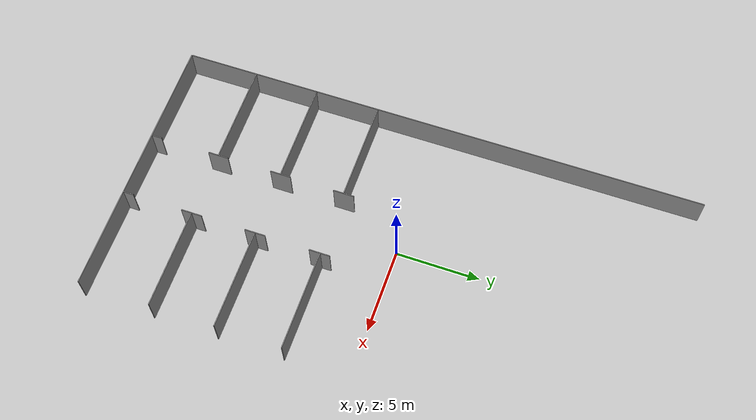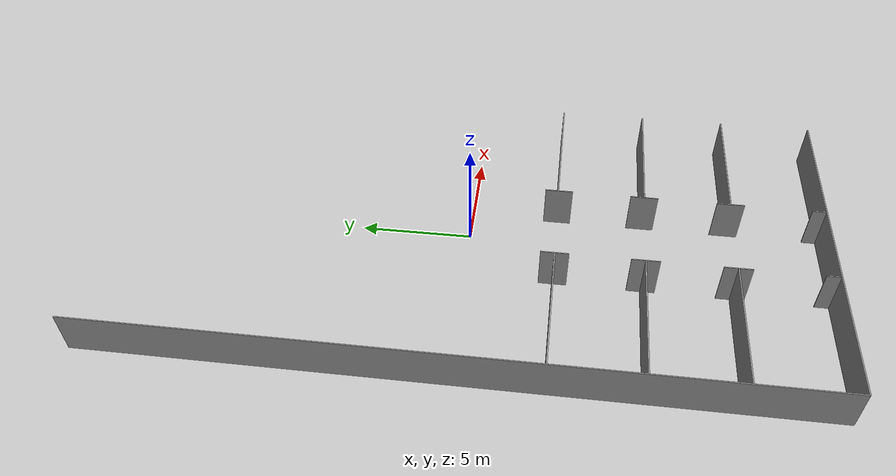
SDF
<sdf version="1.6">
 <model name="straight_corridor">
  <link name="link_0_clone">
   <inertial>
    <mass>1.76422</mass>
    <inertia><ixx>41.0771</ixx><ixy>0</ixy><ixz>0</ixz><iyy>0.544921</iyy><iyz>0</iyz><izz>41.6211</izz></inertia>
   </inertial>
   <pose>-8 -0 0.5 0 1.57066 0</pose>
   <visual name="visual">
    <geometry><box><size>2 32 0.05</size></box></geometry>
    <material>
     <lighting>1</lighting>
     <script><uri>file://media/materials/scripts/gazebo.material</uri><name>Gazebo/Grey</name></script>
     <shader type="vertex"><normal_map>__default__</normal_map></shader>
     <ambient>0.3 0.3 0.3 1</ambient>
     <diffuse>0.7 0.7 0.7 1</diffuse>
     <specular>0.01 0.01 0.01 1</specular>
     <emissive>0 0 0 1</emissive>
    </material>
   </visual>
   <collision name="collision">
    <geometry><box><size>2 32 0.05</size></box></geometry>
    <surface>
     <friction>
      <ode><mu>1</mu><mu2>1</mu2><fdir1>0 0 0</fdir1><slip1>0</slip1><slip2>0</slip2></ode>
      <torsional>
       <coefficient>1</coefficient>
       <patch_radius>0</patch_radius>
       <surface_radius>0</surface_radius>
       <use_patch_radius>1</use_patch_radius>
       <ode><slip>0</slip></ode>
      </torsional>
     </friction>
     <bounce><restitution_coefficient>0</restitution_coefficient><threshold>1e+06</threshold></bounce>
     <contact>
      <collide_without_contact>0</collide_without_contact>
      <collide_without_contact_bitmask>1</collide_without_contact_bitmask>
      <collide_bitmask>1</collide_bitmask>
      <ode>
       <soft_cfm>0</soft_cfm>
       <soft_erp>0.2</soft_erp>
       <kp>1e+13</kp>
       <kd>1</kd>
       <max_vel>0.01</max_vel>
       <min_depth>0</min_depth>
      </ode>
      <bullet>
       <split_impulse>1</split_impulse>
       <split_impulse_penetration_threshold>-0.01</split_impulse_penetration_threshold>
       <soft_cfm>0</soft_cfm>
       <soft_erp>0.2</soft_erp>
       <kp>1e+13</kp>
       <kd>1</kd>
      </bullet>
     </contact>
    </surface>
   </collision>
  </link>
  <link name="link_0_clone_0">
   <inertial>
    <mass>1.76422</mass>
    <inertia><ixx>41.0771</ixx><ixy>0</ixy><ixz>0</ixz><iyy>0.544921</iyy><iyz>0</iyz><izz>41.6211</izz></inertia>
   </inertial>
   <pose>-0 -16 0.5 1.57072 1.57079 3.14151</pose>
   <visual name="visual">
    <geometry><box><size>2 16 0.05</size></box></geometry>
    <material>
     <lighting>1</lighting>
     <script><uri>file://media/materials/scripts/gazebo.material</uri><name>Gazebo/Grey</name></script>
     <shader type="pixel"><normal_map>__default__</normal_map></shader>
     <ambient>0.3 0.3 0.3 1</ambient>
     <diffuse>0.7 0.7 0.7 1</diffuse>
     <specular>0.01 0.01 0.01 1</specular>
     <emissive>0 0 0 1</emissive>
    </material>
   </visual>
   <collision name="collision">
    <geometry><box><size>2 16 0.05</size></box></geometry>
    <surface>
     <friction>
      <ode><mu>1</mu><mu2>1</mu2><fdir1>0 0 0</fdir1><slip1>0</slip1><slip2>0</slip2></ode>
      <torsional>
       <coefficient>1</coefficient>
       <patch_radius>0</patch_radius>
       <surface_radius>0</surface_radius>
       <use_patch_radius>1</use_patch_radius>
       <ode><slip>0</slip></ode>
      </torsional>
     </friction>
     <bounce><restitution_coefficient>0</restitution_coefficient><threshold>1e+06</threshold></bounce>
     <contact>
      <collide_without_contact>0</collide_without_contact>
      <collide_without_contact_bitmask>1</collide_without_contact_bitmask>
      <collide_bitmask>1</collide_bitmask>
      <ode>
       <soft_cfm>0</soft_cfm>
       <soft_erp>0.2</soft_erp>
       <kp>1e+13</kp>
       <kd>1</kd>
       <max_vel>0.01</max_vel>
       <min_depth>0</min_depth>
      </ode>
      <bullet>
       <split_impulse>1</split_impulse>
       <split_impulse_penetration_threshold>-0.01</split_impulse_penetration_threshold>
       <soft_cfm>0</soft_cfm>
       <soft_erp>0.2</soft_erp>
       <kp>1e+13</kp>
       <kd>1</kd>
      </bullet>
     </contact>
    </surface>
   </collision>
  </link>
  <link name="link_0_clone_clone">
   <inertial>
    <mass>0.172458</mass>
    <inertia>
     <ixx>0.0384152</ixx>
     <ixy>0</ixy>
     <ixz>0</ixz>
     <iyy>0.0532677</iyy>
     <iyz>0</iyz>
     <izz>0.0915919</izz>
    </inertia>
   </inertial>
   <pose>2 -11.73 0.500001 3.14159 1.57079 3.14159</pose>
   <visual name="visual">
    <geometry><box><size>2 1.25 0.05</size></box></geometry>
    <material>
     <lighting>1</lighting>
     <script><uri>file://media/materials/scripts/gazebo.material</uri><name>Gazebo/Grey</name></script>
     <shader type="pixel"><normal_map>__default__</normal_map></shader>
     <ambient>0.3 0.3 0.3 1</ambient>
     <diffuse>0.7 0.7 0.7 1</diffuse>
     <specular>0.01 0.01 0.01 1</specular>
     <emissive>0 0 0 1</emissive>
    </material>
   </visual>
   <collision name="collision">
    <geometry><box><size>2 1.25 0.05</size></box></geometry>
    <surface>
     <friction>
      <ode><mu>1</mu><mu2>1</mu2><fdir1>0 0 0</fdir1><slip1>0</slip1><slip2>0</slip2></ode>
      <torsional>
       <coefficient>1</coefficient>
       <patch_radius>0</patch_radius>
       <surface_radius>0</surface_radius>
       <use_patch_radius>1</use_patch_radius>
       <ode><slip>0</slip></ode>
      </torsional>
     </friction>
     <bounce><restitution_coefficient>0</restitution_coefficient><threshold>1e+06</threshold></bounce>
     <contact>
      <collide_without_contact>0</collide_without_contact>
      <collide_without_contact_bitmask>1</collide_without_contact_bitmask>
      <collide_bitmask>1</collide_bitmask>
      <ode>
       <soft_cfm>0</soft_cfm>
       <soft_erp>0.2</soft_erp>
       <kp>1e+13</kp>
       <kd>1</kd>
       <max_vel>0.01</max_vel>
       <min_depth>0</min_depth>
      </ode>
      <bullet>
       <split_impulse>1</split_impulse>
       <split_impulse_penetration_threshold>-0.01</split_impulse_penetration_threshold>
       <soft_cfm>0</soft_cfm>
       <soft_erp>0.2</soft_erp>
       <kp>1e+13</kp>
       <kd>1</kd>
      </bullet>
     </contact>
    </surface>
   </collision>
  </link>
  <link name="link_0_clone_clone_clone">
   <inertial>
    <mass>0.172458</mass>
    <inertia>
     <ixx>0.0384152</ixx>
     <ixy>0</ixy>
     <ixz>0</ixz>
     <iyy>0.0532677</iyy>
     <iyz>0</iyz>
     <izz>0.0915919</izz>
    </inertia>
   </inertial>
   <pose>2 -7.82222 0.5 0 1.57066 0</pose>
   <visual name="visual">
    <geometry><box><size>2 1.25 0.05</size></box></geometry>
    <material>
     <lighting>1</lighting>
     <script><uri>file://media/materials/scripts/gazebo.material</uri><name>Gazebo/Grey</name></script>
     <shader type="pixel"><normal_map>__default__</normal_map></shader>
     <ambient>0.3 0.3 0.3 1</ambient>
     <diffuse>0.7 0.7 0.7 1</diffuse>
     <specular>0.01 0.01 0.01 1</specular>
     <emissive>0 0 0 1</emissive>
    </material>
   </visual>
   <collision name="collision">
    <geometry><box><size>2 1.25 0.05</size></box></geometry>
    <surface>
     <friction>
      <ode><mu>1</mu><mu2>1</mu2><fdir1>0 0 0</fdir1><slip1>0</slip1><slip2>0</slip2></ode>
      <torsional>
       <coefficient>1</coefficient>
       <patch_radius>0</patch_radius>
       <surface_radius>0</surface_radius>
       <use_patch_radius>1</use_patch_radius>
       <ode><slip>0</slip></ode>
      </torsional>
     </friction>
     <bounce><restitution_coefficient>0</restitution_coefficient><threshold>1e+06</threshold></bounce>
     <contact>
      <collide_without_contact>0</collide_without_contact>
      <collide_without_contact_bitmask>1</collide_without_contact_bitmask>
      <collide_bitmask>1</collide_bitmask>
      <ode>
       <soft_cfm>0</soft_cfm>
       <soft_erp>0.2</soft_erp>
       <kp>1e+13</kp>
       <kd>1</kd>
       <max_vel>0.01</max_vel>
       <min_depth>0</min_depth>
      </ode>
      <bullet>
       <split_impulse>1</split_impulse>
       <split_impulse_penetration_threshold>-0.01</split_impulse_penetration_threshold>
       <soft_cfm>0</soft_cfm>
       <soft_erp>0.2</soft_erp>
       <kp>1e+13</kp>
       <kd>1</kd>
      </bullet>
     </contact>
    </surface>
   </collision>
  </link>
  <link name="link_0_clone_clone_clone_0">
   <inertial>
    <mass>0.172458</mass>
    <inertia>
     <ixx>0.0384152</ixx>
     <ixy>0</ixy>
     <ixz>0</ixz>
     <iyy>0.0532677</iyy>
     <iyz>0</iyz>
     <izz>0.0915919</izz>
    </inertia>
   </inertial>
   <pose>2 -3.91 0.5 0 1.57066 0</pose>
   <visual name="visual">
    <geometry><box><size>2 1.25 0.05</size></box></geometry>
    <material>
     <lighting>1</lighting>
     <script><uri>file://media/materials/scripts/gazebo.material</uri><name>Gazebo/Grey</name></script>
     <shader type="pixel"><normal_map>__default__</normal_map></shader>
     <ambient>0.3 0.3 0.3 1</ambient>
     <diffuse>0.7 0.7 0.7 1</diffuse>
     <specular>0.01 0.01 0.01 1</specular>
     <emissive>0 0 0 1</emissive>
    </material>
   </visual>
   <collision name="collision">
    <geometry><box><size>2 1.25 0.05</size></box></geometry>
    <surface>
     <friction>
      <ode><mu>1</mu><mu2>1</mu2><fdir1>0 0 0</fdir1><slip1>0</slip1><slip2>0</slip2></ode>
      <torsional>
       <coefficient>1</coefficient>
       <patch_radius>0</patch_radius>
       <surface_radius>0</surface_radius>
       <use_patch_radius>1</use_patch_radius>
       <ode><slip>0</slip></ode>
      </torsional>
     </friction>
     <bounce><restitution_coefficient>0</restitution_coefficient><threshold>1e+06</threshold></bounce>
     <contact>
      <collide_without_contact>0</collide_without_contact>
      <collide_without_contact_bitmask>1</collide_without_contact_bitmask>
      <collide_bitmask>1</collide_bitmask>
      <ode>
       <soft_cfm>0</soft_cfm>
       <soft_erp>0.2</soft_erp>
       <kp>1e+13</kp>
       <kd>1</kd>
       <max_vel>0.01</max_vel>
       <min_depth>0</min_depth>
      </ode>
      <bullet>
       <split_impulse>1</split_impulse>
       <split_impulse_penetration_threshold>-0.01</split_impulse_penetration_threshold>
       <soft_cfm>0</soft_cfm>
       <soft_erp>0.2</soft_erp>
       <kp>1e+13</kp>
       <kd>1</kd>
      </bullet>
     </contact>
    </surface>
   </collision>
  </link>
  <link name="link_0_clone_clone_clone_0_clone">
   <inertial>
    <mass>0.172458</mass>
    <inertia>
     <ixx>0.0384152</ixx>
     <ixy>0</ixy>
     <ixz>0</ixz>
     <iyy>0.0532677</iyy>
     <iyz>0</iyz>
     <izz>0.0915919</izz>
    </inertia>
   </inertial>
   <pose>-2 -3.9111 0.5 0 1.57051 0</pose>
   <visual name="visual">
    <geometry><box><size>2 1.25 0.05</size></box></geometry>
    <material>
     <lighting>1</lighting>
     <script><uri>file://media/materials/scripts/gazebo.material</uri><name>Gazebo/Grey</name></script>
     <shader type="pixel"><normal_map>__default__</normal_map></shader>
     <ambient>0.3 0.3 0.3 1</ambient>
     <diffuse>0.7 0.7 0.7 1</diffuse>
     <specular>0.01 0.01 0.01 1</specular>
     <emissive>0 0 0 1</emissive>
    </material>
   </visual>
   <collision name="collision">
    <geometry><box><size>2 1.25 0.05</size></box></geometry>
    <surface>
     <friction>
      <ode><mu>1</mu><mu2>1</mu2><fdir1>0 0 0</fdir1><slip1>0</slip1><slip2>0</slip2></ode>
      <torsional>
       <coefficient>1</coefficient>
       <patch_radius>0</patch_radius>
       <surface_radius>0</surface_radius>
       <use_patch_radius>1</use_patch_radius>
       <ode><slip>0</slip></ode>
      </torsional>
     </friction>
     <bounce><restitution_coefficient>0</restitution_coefficient><threshold>1e+06</threshold></bounce>
     <contact>
      <collide_without_contact>0</collide_without_contact>
      <collide_without_contact_bitmask>1</collide_without_contact_bitmask>
      <collide_bitmask>1</collide_bitmask>
      <ode>
       <soft_cfm>0</soft_cfm>
       <soft_erp>0.2</soft_erp>
       <kp>1e+13</kp>
       <kd>1</kd>
       <max_vel>0.01</max_vel>
       <min_depth>0</min_depth>
      </ode>
      <bullet>
       <split_impulse>1</split_impulse>
       <split_impulse_penetration_threshold>-0.01</split_impulse_penetration_threshold>
       <soft_cfm>0</soft_cfm>
       <soft_erp>0.2</soft_erp>
       <kp>1e+13</kp>
       <kd>1</kd>
      </bullet>
     </contact>
    </surface>
   </collision>
  </link>
  <link name="link_0_clone_clone_clone_4">
   <inertial>
    <mass>0.172458</mass>
    <inertia>
     <ixx>0.0384152</ixx>
     <ixy>0</ixy>
     <ixz>0</ixz>
     <iyy>0.0532677</iyy>
     <iyz>0</iyz>
     <izz>0.0915919</izz>
    </inertia>
   </inertial>
   <pose>2 -15.6736 0.5 0 1.57066 0</pose>
   <visual name="visual">
    <geometry><box><size>2 0.625 0.05</size></box></geometry>
    <material>
     <lighting>1</lighting>
     <script><uri>file://media/materials/scripts/gazebo.material</uri><name>Gazebo/Grey</name></script>
     <shader type="pixel"><normal_map>__default__</normal_map></shader>
     <ambient>0.3 0.3 0.3 1</ambient>
     <diffuse>0.7 0.7 0.7 1</diffuse>
     <specular>0.01 0.01 0.01 1</specular>
     <emissive>0 0 0 1</emissive>
    </material>
   </visual>
   <collision name="collision">
    <geometry><box><size>2 0.625 0.05</size></box></geometry>
    <surface>
     <friction>
      <ode><mu>1</mu><mu2>1</mu2><fdir1>0 0 0</fdir1><slip1>0</slip1><slip2>0</slip2></ode>
      <torsional>
       <coefficient>1</coefficient>
       <patch_radius>0</patch_radius>
       <surface_radius>0</surface_radius>
       <use_patch_radius>1</use_patch_radius>
       <ode><slip>0</slip></ode>
      </torsional>
     </friction>
     <bounce><restitution_coefficient>0</restitution_coefficient><threshold>1e+06</threshold></bounce>
     <contact>
      <collide_without_contact>0</collide_without_contact>
      <collide_without_contact_bitmask>1</collide_without_contact_bitmask>
      <collide_bitmask>1</collide_bitmask>
      <ode>
       <soft_cfm>0</soft_cfm>
       <soft_erp>0.2</soft_erp>
       <kp>1e+13</kp>
       <kd>1</kd>
       <max_vel>0.01</max_vel>
       <min_depth>0</min_depth>
      </ode>
      <bullet>
       <split_impulse>1</split_impulse>
       <split_impulse_penetration_threshold>-0.01</split_impulse_penetration_threshold>
       <soft_cfm>0</soft_cfm>
       <soft_erp>0.2</soft_erp>
       <kp>1e+13</kp>
       <kd>1</kd>
      </bullet>
     </contact>
    </surface>
   </collision>
  </link>
  <link name="link_0_clone_clone_clone_4_clone">
   <inertial>
    <mass>0.172458</mass>
    <inertia>
     <ixx>0.0384152</ixx>
     <ixy>0</ixy>
     <ixz>0</ixz>
     <iyy>0.0532677</iyy>
     <iyz>0</iyz>
     <izz>0.0915919</izz>
    </inertia>
   </inertial>
   <pose>-2 -15.6649 0.5 0 1.57051 0</pose>
   <visual name="visual">
    <geometry><box><size>2 0.625 0.05</size></box></geometry>
    <material>
     <lighting>1</lighting>
     <script><uri>file://media/materials/scripts/gazebo.material</uri><name>Gazebo/Grey</name></script>
     <shader type="pixel"><normal_map>__default__</normal_map></shader>
     <ambient>0.3 0.3 0.3 1</ambient>
     <diffuse>0.7 0.7 0.7 1</diffuse>
     <specular>0.01 0.01 0.01 1</specular>
     <emissive>0 0 0 1</emissive>
    </material>
   </visual>
   <collision name="collision">
    <geometry><box><size>2 0.625 0.05</size></box></geometry>
    <surface>
     <friction>
      <ode><mu>1</mu><mu2>1</mu2><fdir1>0 0 0</fdir1><slip1>0</slip1><slip2>0</slip2></ode>
      <torsional>
       <coefficient>1</coefficient>
       <patch_radius>0</patch_radius>
       <surface_radius>0</surface_radius>
       <use_patch_radius>1</use_patch_radius>
       <ode><slip>0</slip></ode>
      </torsional>
     </friction>
     <bounce><restitution_coefficient>0</restitution_coefficient><threshold>1e+06</threshold></bounce>
     <contact>
      <collide_without_contact>0</collide_without_contact>
      <collide_without_contact_bitmask>1</collide_without_contact_bitmask>
      <collide_bitmask>1</collide_bitmask>
      <ode>
       <soft_cfm>0</soft_cfm>
       <soft_erp>0.2</soft_erp>
       <kp>1e+13</kp>
       <kd>1</kd>
       <max_vel>0.01</max_vel>
       <min_depth>0</min_depth>
      </ode>
      <bullet>
       <split_impulse>1</split_impulse>
       <split_impulse_penetration_threshold>-0.01</split_impulse_penetration_threshold>
       <soft_cfm>0</soft_cfm>
       <soft_erp>0.2</soft_erp>
       <kp>1e+13</kp>
       <kd>1</kd>
      </bullet>
     </contact>
    </surface>
   </collision>
  </link>
  <link name="link_0_clone_clone_clone_5">
   <inertial>
    <mass>0.172458</mass>
    <inertia>
     <ixx>0.0384152</ixx>
     <ixy>0</ixy>
     <ixz>0</ixz>
     <iyy>0.0532677</iyy>
     <iyz>0</iyz>
     <izz>0.0915919</izz>
    </inertia>
   </inertial>
   <pose>-2 -11.7333 0.5 0 1.57066 0</pose>
   <visual name="visual">
    <geometry><box><size>2 1.25 0.05</size></box></geometry>
    <material>
     <lighting>1</lighting>
     <script><uri>file://media/materials/scripts/gazebo.material</uri><name>Gazebo/Grey</name></script>
     <shader type="pixel"><normal_map>__default__</normal_map></shader>
     <ambient>0.3 0.3 0.3 1</ambient>
     <diffuse>0.7 0.7 0.7 1</diffuse>
     <specular>0.01 0.01 0.01 1</specular>
     <emissive>0 0 0 1</emissive>
    </material>
   </visual>
   <collision name="collision">
    <geometry><box><size>2 1.25 0.05</size></box></geometry>
    <surface>
     <friction>
      <ode><mu>1</mu><mu2>1</mu2><fdir1>0 0 0</fdir1><slip1>0</slip1><slip2>0</slip2></ode>
      <torsional>
       <coefficient>1</coefficient>
       <patch_radius>0</patch_radius>
       <surface_radius>0</surface_radius>
       <use_patch_radius>1</use_patch_radius>
       <ode><slip>0</slip></ode>
      </torsional>
     </friction>
     <bounce><restitution_coefficient>0</restitution_coefficient><threshold>1e+06</threshold></bounce>
     <contact>
      <collide_without_contact>0</collide_without_contact>
      <collide_without_contact_bitmask>1</collide_without_contact_bitmask>
      <collide_bitmask>1</collide_bitmask>
      <ode>
       <soft_cfm>0</soft_cfm>
       <soft_erp>0.2</soft_erp>
       <kp>1e+13</kp>
       <kd>1</kd>
       <max_vel>0.01</max_vel>
       <min_depth>0</min_depth>
      </ode>
      <bullet>
       <split_impulse>1</split_impulse>
       <split_impulse_penetration_threshold>-0.01</split_impulse_penetration_threshold>
       <soft_cfm>0</soft_cfm>
       <soft_erp>0.2</soft_erp>
       <kp>1e+13</kp>
       <kd>1</kd>
      </bullet>
     </contact>
    </surface>
   </collision>
  </link>
  <link name="link_0_clone_clone_clone_clone_0">
   <inertial>
    <mass>0.172458</mass>
    <inertia>
     <ixx>0.0384152</ixx>
     <ixy>0</ixy>
     <ixz>0</ixz>
     <iyy>0.0532677</iyy>
     <iyz>0</iyz>
     <izz>0.0915919</izz>
    </inertia>
   </inertial>
   <pose>-2 -7.82222 0.5 0 1.57051 0</pose>
   <visual name="visual">
    <geometry><box><size>2 1.25 0.05</size></box></geometry>
    <material>
     <lighting>1</lighting>
     <script><uri>file://media/materials/scripts/gazebo.material</uri><name>Gazebo/Grey</name></script>
     <shader type="pixel"><normal_map>__default__</normal_map></shader>
     <ambient>0.3 0.3 0.3 1</ambient>
     <diffuse>0.7 0.7 0.7 1</diffuse>
     <specular>0.01 0.01 0.01 1</specular>
     <emissive>0 0 0 1</emissive>
    </material>
   </visual>
   <collision name="collision">
    <geometry><box><size>2 1.25 0.05</size></box></geometry>
    <surface>
     <friction>
      <ode><mu>1</mu><mu2>1</mu2><fdir1>0 0 0</fdir1><slip1>0</slip1><slip2>0</slip2></ode>
      <torsional>
       <coefficient>1</coefficient>
       <patch_radius>0</patch_radius>
       <surface_radius>0</surface_radius>
       <use_patch_radius>1</use_patch_radius>
       <ode><slip>0</slip></ode>
      </torsional>
     </friction>
     <bounce><restitution_coefficient>0</restitution_coefficient><threshold>1e+06</threshold></bounce>
     <contact>
      <collide_without_contact>0</collide_without_contact>
      <collide_without_contact_bitmask>1</collide_without_contact_bitmask>
      <collide_bitmask>1</collide_bitmask>
      <ode>
       <soft_cfm>0</soft_cfm>
       <soft_erp>0.2</soft_erp>
       <kp>1e+13</kp>
       <kd>1</kd>
       <max_vel>0.01</max_vel>
       <min_depth>0</min_depth>
      </ode>
      <bullet>
       <split_impulse>1</split_impulse>
       <split_impulse_penetration_threshold>-0.01</split_impulse_penetration_threshold>
       <soft_cfm>0</soft_cfm>
       <soft_erp>0.2</soft_erp>
       <kp>1e+13</kp>
       <kd>1</kd>
      </bullet>
     </contact>
    </surface>
   </collision>
  </link>
  <link name="link_0_clone_clone_clone_clone_clone_clone_clone_0">
   <inertial>
    <mass>1.76422</mass>
    <inertia><ixx>41.0771</ixx><ixy>0</ixy><ixz>0</ixz><iyy>0.544921</iyy><iyz>0</iyz><izz>41.6211</izz></inertia>
   </inertial>
   <pose>4.98225 -3.86468 0.501469 1.57109 1.57039 0.000292</pose>
   <visual name="visual">
    <geometry><box><size>2 6 0.05</size></box></geometry>
    <material>
     <lighting>1</lighting>
     <script><uri>file://media/materials/scripts/gazebo.material</uri><name>Gazebo/Grey</name></script>
     <shader type="pixel"><normal_map>__default__</normal_map></shader>
     <ambient>0.3 0.3 0.3 1</ambient>
     <diffuse>0.7 0.7 0.7 1</diffuse>
     <specular>0.01 0.01 0.01 1</specular>
     <emissive>0 0 0 1</emissive>
    </material>
   </visual>
   <collision name="collision">
    <geometry><box><size>2 6 0.05</size></box></geometry>
    <surface>
     <friction>
      <ode><mu>1</mu><mu2>1</mu2><fdir1>0 0 0</fdir1><slip1>0</slip1><slip2>0</slip2></ode>
      <torsional>
       <coefficient>1</coefficient>
       <patch_radius>0</patch_radius>
       <surface_radius>0</surface_radius>
       <use_patch_radius>1</use_patch_radius>
       <ode><slip>0</slip></ode>
      </torsional>
     </friction>
     <bounce><restitution_coefficient>0</restitution_coefficient><threshold>1e+06</threshold></bounce>
     <contact>
      <collide_without_contact>0</collide_without_contact>
      <collide_without_contact_bitmask>1</collide_without_contact_bitmask>
      <collide_bitmask>1</collide_bitmask>
      <ode>
       <soft_cfm>0</soft_cfm>
       <soft_erp>0.2</soft_erp>
       <kp>1e+13</kp>
       <kd>1</kd>
       <max_vel>0.01</max_vel>
       <min_depth>0</min_depth>
      </ode>
      <bullet>
       <split_impulse>1</split_impulse>
       <split_impulse_penetration_threshold>-0.01</split_impulse_penetration_threshold>
       <soft_cfm>0</soft_cfm>
       <soft_erp>0.2</soft_erp>
       <kp>1e+13</kp>
       <kd>1</kd>
      </bullet>
     </contact>
    </surface>
   </collision>
  </link>
  <link name="link_0_clone_clone_clone_clone_clone_clone_clone_1">
   <inertial>
    <mass>1.76422</mass>
    <inertia><ixx>41.0771</ixx><ixy>0</ixy><ixz>0</ixz><iyy>0.544921</iyy><iyz>0</iyz><izz>41.6211</izz></inertia>
   </inertial>
   <pose>5 -7.82222 0.5 1.571 1.57037 0.000212</pose>
   <visual name="visual">
    <geometry><box><size>2 6 0.05</size></box></geometry>
    <material>
     <lighting>1</lighting>
     <script><uri>file://media/materials/scripts/gazebo.material</uri><name>Gazebo/Grey</name></script>
     <shader type="pixel"><normal_map>__default__</normal_map></shader>
     <ambient>0.3 0.3 0.3 1</ambient>
     <diffuse>0.7 0.7 0.7 1</diffuse>
     <specular>0.01 0.01 0.01 1</specular>
     <emissive>0 0 0 1</emissive>
    </material>
   </visual>
   <collision name="collision">
    <geometry><box><size>2 6 0.05</size></box></geometry>
    <surface>
     <friction>
      <ode><mu>1</mu><mu2>1</mu2><fdir1>0 0 0</fdir1><slip1>0</slip1><slip2>0</slip2></ode>
      <torsional>
       <coefficient>1</coefficient>
       <patch_radius>0</patch_radius>
       <surface_radius>0</surface_radius>
       <use_patch_radius>1</use_patch_radius>
       <ode><slip>0</slip></ode>
      </torsional>
     </friction>
     <bounce><restitution_coefficient>0</restitution_coefficient><threshold>1e+06</threshold></bounce>
     <contact>
      <collide_without_contact>0</collide_without_contact>
      <collide_without_contact_bitmask>1</collide_without_contact_bitmask>
      <collide_bitmask>1</collide_bitmask>
      <ode>
       <soft_cfm>0</soft_cfm>
       <soft_erp>0.2</soft_erp>
       <kp>1e+13</kp>
       <kd>1</kd>
       <max_vel>0.01</max_vel>
       <min_depth>0</min_depth>
      </ode>
      <bullet>
       <split_impulse>1</split_impulse>
       <split_impulse_penetration_threshold>-0.01</split_impulse_penetration_threshold>
       <soft_cfm>0</soft_cfm>
       <soft_erp>0.2</soft_erp>
       <kp>1e+13</kp>
       <kd>1</kd>
      </bullet>
     </contact>
    </surface>
   </collision>
  </link>
  <link name="link_0_clone_clone_clone_clone_clone_clone_clone_2">
   <inertial>
    <mass>1.76422</mass>
    <inertia><ixx>41.0771</ixx><ixy>0</ixy><ixz>0</ixz><iyy>0.544921</iyy><iyz>0</iyz><izz>41.6211</izz></inertia>
   </inertial>
   <pose>4.99298 -11.7271 0.50147 1.57093 1.57037 0.000139</pose>
   <visual name="visual">
    <geometry><box><size>2 6 0.05</size></box></geometry>
    <material>
     <lighting>1</lighting>
     <script><uri>file://media/materials/scripts/gazebo.material</uri><name>Gazebo/Grey</name></script>
     <shader type="pixel"><normal_map>__default__</normal_map></shader>
     <ambient>0.3 0.3 0.3 1</ambient>
     <diffuse>0.7 0.7 0.7 1</diffuse>
     <specular>0.01 0.01 0.01 1</specular>
     <emissive>0 0 0 1</emissive>
    </material>
   </visual>
   <collision name="collision">
    <geometry><box><size>2 6 0.05</size></box></geometry>
    <surface>
     <friction>
      <ode><mu>1</mu><mu2>1</mu2><fdir1>0 0 0</fdir1><slip1>0</slip1><slip2>0</slip2></ode>
      <torsional>
       <coefficient>1</coefficient>
       <patch_radius>0</patch_radius>
       <surface_radius>0</surface_radius>
       <use_patch_radius>1</use_patch_radius>
       <ode><slip>0</slip></ode>
      </torsional>
     </friction>
     <bounce><restitution_coefficient>0</restitution_coefficient><threshold>1e+06</threshold></bounce>
     <contact>
      <collide_without_contact>0</collide_without_contact>
      <collide_without_contact_bitmask>1</collide_without_contact_bitmask>
      <collide_bitmask>1</collide_bitmask>
      <ode>
       <soft_cfm>0</soft_cfm>
       <soft_erp>0.2</soft_erp>
       <kp>1e+13</kp>
       <kd>1</kd>
       <max_vel>0.01</max_vel>
       <min_depth>0</min_depth>
      </ode>
      <bullet>
       <split_impulse>1</split_impulse>
       <split_impulse_penetration_threshold>-0.01</split_impulse_penetration_threshold>
       <soft_cfm>0</soft_cfm>
       <soft_erp>0.2</soft_erp>
       <kp>1e+13</kp>
       <kd>1</kd>
      </bullet>
     </contact>
    </surface>
   </collision>
  </link>
  <link name="link_0_clone_clone_clone_clone_clone_clone_clone_3">
   <inertial>
    <mass>1.76422</mass>
    <inertia><ixx>41.0771</ixx><ixy>0</ixy><ixz>0</ixz><iyy>0.544921</iyy><iyz>0</iyz><izz>41.6211</izz></inertia>
   </inertial>
   <pose>-5 -11.7333 0.5 1.571 1.57037 0.000212</pose>
   <visual name="visual">
    <geometry><box><size>2 6 0.05</size></box></geometry>
    <material>
     <lighting>1</lighting>
     <script><uri>file://media/materials/scripts/gazebo.material</uri><name>Gazebo/Grey</name></script>
     <shader type="pixel"><normal_map>__default__</normal_map></shader>
     <ambient>0.3 0.3 0.3 1</ambient>
     <diffuse>0.7 0.7 0.7 1</diffuse>
     <specular>0.01 0.01 0.01 1</specular>
     <emissive>0 0 0 1</emissive>
    </material>
   </visual>
   <collision name="collision">
    <geometry><box><size>2 6 0.05</size></box></geometry>
    <surface>
     <friction>
      <ode><mu>1</mu><mu2>1</mu2><fdir1>0 0 0</fdir1><slip1>0</slip1><slip2>0</slip2></ode>
      <torsional>
       <coefficient>1</coefficient>
       <patch_radius>0</patch_radius>
       <surface_radius>0</surface_radius>
       <use_patch_radius>1</use_patch_radius>
       <ode><slip>0</slip></ode>
      </torsional>
     </friction>
     <bounce><restitution_coefficient>0</restitution_coefficient><threshold>1e+06</threshold></bounce>
     <contact>
      <collide_without_contact>0</collide_without_contact>
      <collide_without_contact_bitmask>1</collide_without_contact_bitmask>
      <collide_bitmask>1</collide_bitmask>
      <ode>
       <soft_cfm>0</soft_cfm>
       <soft_erp>0.2</soft_erp>
       <kp>1e+13</kp>
       <kd>1</kd>
       <max_vel>0.01</max_vel>
       <min_depth>0</min_depth>
      </ode>
      <bullet>
       <split_impulse>1</split_impulse>
       <split_impulse_penetration_threshold>-0.01</split_impulse_penetration_threshold>
       <soft_cfm>0</soft_cfm>
       <soft_erp>0.2</soft_erp>
       <kp>1e+13</kp>
       <kd>1</kd>
      </bullet>
     </contact>
    </surface>
   </collision>
  </link>
  <link name="link_0_clone_clone_clone_clone_clone_clone_clone_4">
   <inertial>
    <mass>1.76422</mass>
    <inertia><ixx>41.0771</ixx><ixy>0</ixy><ixz>0</ixz><iyy>0.544921</iyy><iyz>0</iyz><izz>41.6211</izz></inertia>
   </inertial>
   <pose>-5 -7.8222 0.5 1.57086 1.57037 7.3e-05</pose>
   <visual name="visual">
    <geometry><box><size>2 6 0.05</size></box></geometry>
    <material>
     <lighting>1</lighting>
     <script><uri>file://media/materials/scripts/gazebo.material</uri><name>Gazebo/Grey</name></script>
     <shader type="pixel"><normal_map>__default__</normal_map></shader>
     <ambient>0.3 0.3 0.3 1</ambient>
     <diffuse>0.7 0.7 0.7 1</diffuse>
     <specular>0.01 0.01 0.01 1</specular>
     <emissive>0 0 0 1</emissive>
    </material>
   </visual>
   <collision name="collision">
    <geometry><box><size>2 6 0.05</size></box></geometry>
    <surface>
     <friction>
      <ode><mu>1</mu><mu2>1</mu2><fdir1>0 0 0</fdir1><slip1>0</slip1><slip2>0</slip2></ode>
      <torsional>
       <coefficient>1</coefficient>
       <patch_radius>0</patch_radius>
       <surface_radius>0</surface_radius>
       <use_patch_radius>1</use_patch_radius>
       <ode><slip>0</slip></ode>
      </torsional>
     </friction>
     <bounce><restitution_coefficient>0</restitution_coefficient><threshold>1e+06</threshold></bounce>
     <contact>
      <collide_without_contact>0</collide_without_contact>
      <collide_without_contact_bitmask>1</collide_without_contact_bitmask>
      <collide_bitmask>1</collide_bitmask>
      <ode>
       <soft_cfm>0</soft_cfm>
       <soft_erp>0.2</soft_erp>
       <kp>1e+13</kp>
       <kd>1</kd>
       <max_vel>0.01</max_vel>
       <min_depth>0</min_depth>
      </ode>
      <bullet>
       <split_impulse>1</split_impulse>
       <split_impulse_penetration_threshold>-0.01</split_impulse_penetration_threshold>
       <soft_cfm>0</soft_cfm>
       <soft_erp>0.2</soft_erp>
       <kp>1e+13</kp>
       <kd>1</kd>
      </bullet>
     </contact>
    </surface>
   </collision>
  </link>
  <link name="link_0_clone_clone_clone_clone_clone_clone_clone_5">
   <inertial>
    <mass>1.76422</mass>
    <inertia><ixx>41.0771</ixx><ixy>0</ixy><ixz>0</ixz><iyy>0.544921</iyy><iyz>0</iyz><izz>41.6211</izz></inertia>
   </inertial>
   <pose>-5 -3.9111 0.5 1.571 1.57037 0.000212</pose>
   <visual name="visual">
    <geometry><box><size>2 6 0.05</size></box></geometry>
    <material>
     <lighting>1</lighting>
     <script><uri>file://media/materials/scripts/gazebo.material</uri><name>Gazebo/Grey</name></script>
     <shader type="pixel"><normal_map>__default__</normal_map></shader>
     <ambient>0.3 0.3 0.3 1</ambient>
     <diffuse>0.7 0.7 0.7 1</diffuse>
     <specular>0.01 0.01 0.01 1</specular>
     <emissive>0 0 0 1</emissive>
    </material>
   </visual>
   <collision name="collision">
    <geometry><box><size>2 6 0.05</size></box></geometry>
    <surface>
     <friction>
      <ode><mu>1</mu><mu2>1</mu2><fdir1>0 0 0</fdir1><slip1>0</slip1><slip2>0</slip2></ode>
      <torsional>
       <coefficient>1</coefficient>
       <patch_radius>0</patch_radius>
       <surface_radius>0</surface_radius>
       <use_patch_radius>1</use_patch_radius>
       <ode><slip>0</slip></ode>
      </torsional>
     </friction>
     <bounce><restitution_coefficient>0</restitution_coefficient><threshold>1e+06</threshold></bounce>
     <contact>
      <collide_without_contact>0</collide_without_contact>
      <collide_without_contact_bitmask>1</collide_without_contact_bitmask>
      <collide_bitmask>1</collide_bitmask>
      <ode>
       <soft_cfm>0</soft_cfm>
       <soft_erp>0.2</soft_erp>
       <kp>1e+13</kp>
       <kd>1</kd>
       <max_vel>0.01</max_vel>
       <min_depth>0</min_depth>
      </ode>
      <bullet>
       <split_impulse>1</split_impulse>
       <split_impulse_penetration_threshold>-0.01</split_impulse_penetration_threshold>
       <soft_cfm>0</soft_cfm>
       <soft_erp>0.2</soft_erp>
       <kp>1e+13</kp>
       <kd>1</kd>
      </bullet>
     </contact>
    </surface>
   </collision>
  </link>
  <static>0</static>
 </model>
</sdf>
